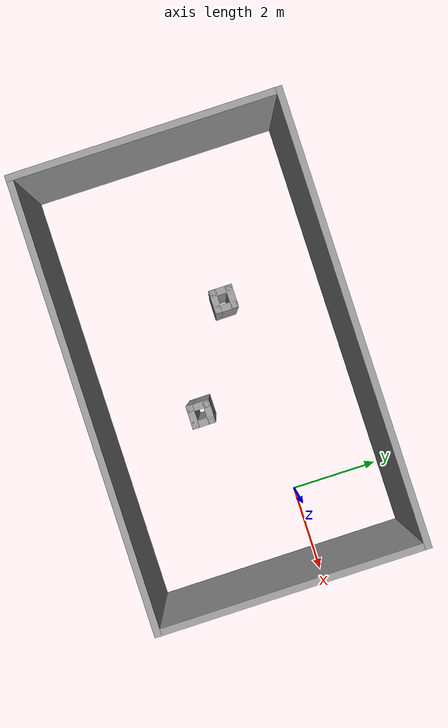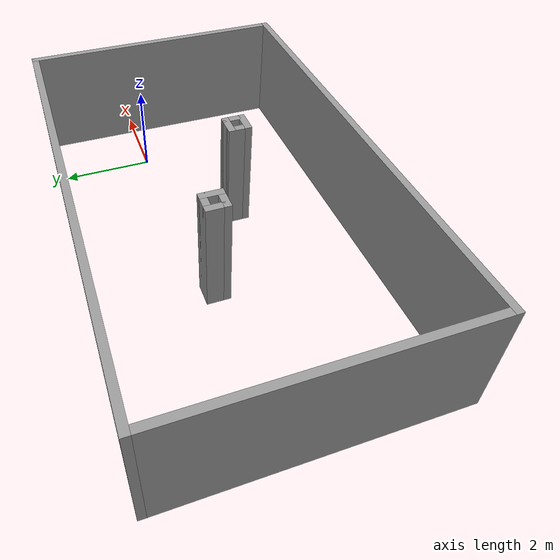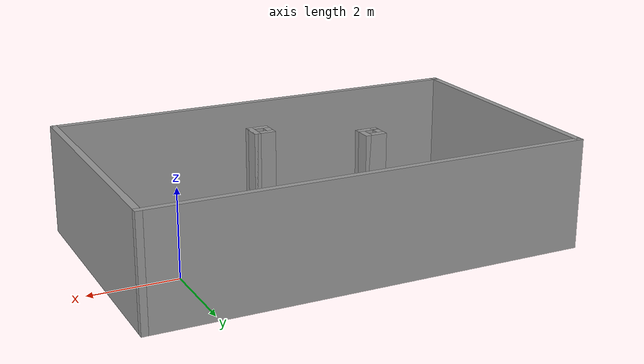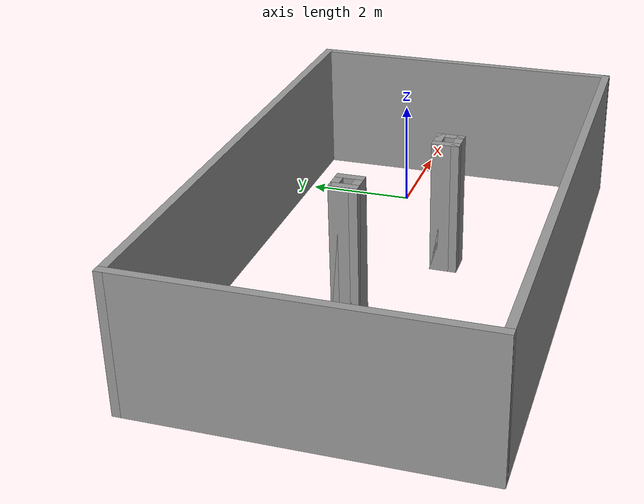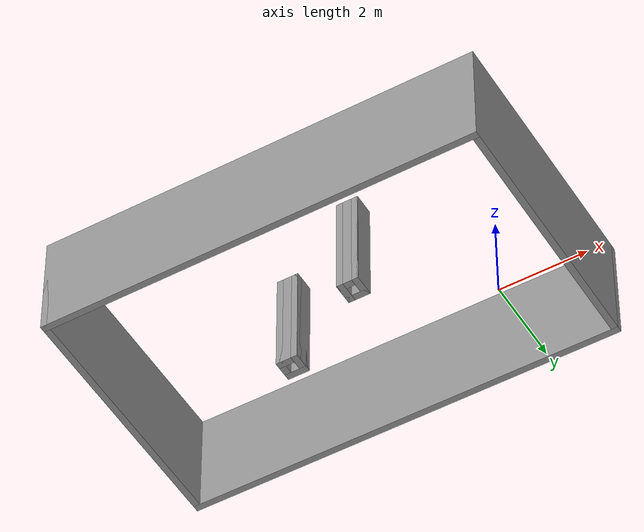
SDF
<?xml version='1.0'?>
<sdf version='1.7'>
  <model name='Test_1'>
    <pose>-3.415 -0.775 0 0 -0 0</pose>
    <link name='Wall_1'>
      <collision name='Wall_1_Collision'>
        <geometry>
          <box>
            <size>10 0.15 2.5</size>
          </box>
        </geometry>
        <pose>0 0 1.25 0 -0 0</pose>
      </collision>
      <visual name='Wall_1_Visual'>
        <pose>0 0 1.25 0 -0 0</pose>
        <geometry>
          <box>
            <size>10 0.15 2.5</size>
          </box>
        </geometry>
        <material>
          <script>
            <uri>file://media/materials/scripts/gazebo.material</uri>
            <name>Gazebo/Grey</name>
          </script>
          <ambient>1 1 1 1</ambient>
        </material>
        <meta>
          <layer>0</layer>
        </meta>
      </visual>
      <pose>0 2.925 0 0 -0 3.14159</pose>
    </link>
    <link name='Wall_10'>
      <collision name='Wall_10_Collision'>
        <geometry>
          <box>
            <size>0.5 0.15 2.5</size>
          </box>
        </geometry>
        <pose>0 0 1.25 0 -0 0</pose>
      </collision>
      <visual name='Wall_10_Visual'>
        <pose>0 0 1.25 0 -0 0</pose>
        <geometry>
          <box>
            <size>0.5 0.15 2.5</size>
          </box>
        </geometry>
        <material>
          <script>
            <uri>file://media/materials/scripts/gazebo.material</uri>
            <name>Gazebo/Grey</name>
          </script>
          <ambient>1 1 1 1</ambient>
        </material>
        <meta>
          <layer>0</layer>
        </meta>
      </visual>
      <pose>0.92 -0.855 0 0 -0 3.14159</pose>
    </link>
    <link name='Wall_12'>
      <collision name='Wall_12_Collision'>
        <geometry>
          <box>
            <size>0.5 0.15 2.5</size>
          </box>
        </geometry>
        <pose>0 0 1.25 0 -0 0</pose>
      </collision>
      <visual name='Wall_12_Visual'>
        <pose>0 0 1.25 0 -0 0</pose>
        <geometry>
          <box>
            <size>0.5 0.15 2.5</size>
          </box>
        </geometry>
        <material>
          <script>
            <uri>file://media/materials/scripts/gazebo.material</uri>
            <name>Gazebo/Grey</name>
          </script>
          <ambient>1 1 1 1</ambient>
        </material>
        <meta>
          <layer>0</layer>
        </meta>
      </visual>
      <pose>-1.19 0.675 0 0 -0 0</pose>
    </link>
    <link name='Wall_13'>
      <collision name='Wall_13_Collision'>
        <geometry>
          <box>
            <size>0.5 0.15 2.5</size>
          </box>
        </geometry>
        <pose>0 0 1.25 0 -0 0</pose>
      </collision>
      <visual name='Wall_13_Visual'>
        <pose>0 0 1.25 0 -0 0</pose>
        <geometry>
          <box>
            <size>0.5 0.15 2.5</size>
          </box>
        </geometry>
        <material>
          <script>
            <uri>file://media/materials/scripts/gazebo.material</uri>
            <name>Gazebo/Grey</name>
          </script>
          <ambient>1 1 1 1</ambient>
        </material>
        <meta>
          <layer>0</layer>
        </meta>
      </visual>
      <pose>-1.015 0.5 0 0 -0 -1.5708</pose>
    </link>
    <link name='Wall_14'>
      <collision name='Wall_14_Collision'>
        <geometry>
          <box>
            <size>0.5 0.15 2.5</size>
          </box>
        </geometry>
        <pose>0 0 1.25 0 -0 0</pose>
      </collision>
      <visual name='Wall_14_Visual'>
        <pose>0 0 1.25 0 -0 0</pose>
        <geometry>
          <box>
            <size>0.5 0.15 2.5</size>
          </box>
        </geometry>
        <material>
          <script>
            <uri>file://media/materials/scripts/gazebo.material</uri>
            <name>Gazebo/Grey</name>
          </script>
          <ambient>1 1 1 1</ambient>
        </material>
        <meta>
          <layer>0</layer>
        </meta>
      </visual>
      <pose>-1.19 0.325 0 0 -0 3.14159</pose>
    </link>
    <link name='Wall_15'>
      <collision name='Wall_15_Collision'>
        <geometry>
          <box>
            <size>0.5 0.15 2.5</size>
          </box>
        </geometry>
        <pose>0 0 1.25 0 -0 0</pose>
      </collision>
      <visual name='Wall_15_Visual'>
        <pose>0 0 1.25 0 -0 0</pose>
        <geometry>
          <box>
            <size>0.5 0.15 2.5</size>
          </box>
        </geometry>
        <material>
          <script>
            <uri>file://media/materials/scripts/gazebo.material</uri>
            <name>Gazebo/Grey</name>
          </script>
          <ambient>1 1 1 1</ambient>
        </material>
        <meta>
          <layer>0</layer>
        </meta>
      </visual>
      <pose>-1.365 0.5 0 0 -0 1.5708</pose>
    </link>
    <link name='Wall_2'>
      <collision name='Wall_2_Collision'>
        <geometry>
          <box>
            <size>6 0.15 2.5</size>
          </box>
        </geometry>
        <pose>0 0 1.25 0 -0 0</pose>
      </collision>
      <visual name='Wall_2_Visual'>
        <pose>0 0 1.25 0 -0 0</pose>
        <geometry>
          <box>
            <size>6 0.15 2.5</size>
          </box>
        </geometry>
        <material>
          <script>
            <uri>file://media/materials/scripts/gazebo.material</uri>
            <name>Gazebo/Grey</name>
          </script>
          <ambient>1 1 1 1</ambient>
        </material>
        <meta>
          <layer>0</layer>
        </meta>
      </visual>
      <pose>-4.925 0 0 0 -0 -1.5708</pose>
    </link>
    <link name='Wall_3'>
      <collision name='Wall_3_Collision'>
        <geometry>
          <box>
            <size>10 0.15 2.5</size>
          </box>
        </geometry>
        <pose>0 0 1.25 0 -0 0</pose>
      </collision>
      <visual name='Wall_3_Visual'>
        <pose>0 0 1.25 0 -0 0</pose>
        <geometry>
          <box>
            <size>10 0.15 2.5</size>
          </box>
        </geometry>
        <material>
          <script>
            <uri>file://media/materials/scripts/gazebo.material</uri>
            <name>Gazebo/Grey</name>
          </script>
          <ambient>1 1 1 1</ambient>
        </material>
        <meta>
          <layer>0</layer>
        </meta>
      </visual>
      <pose>0 -2.925 0 0 -0 0</pose>
    </link>
    <link name='Wall_4'>
      <collision name='Wall_4_Collision'>
        <geometry>
          <box>
            <size>6 0.15 2.5</size>
          </box>
        </geometry>
        <pose>0 0 1.25 0 -0 0</pose>
      </collision>
      <visual name='Wall_4_Visual'>
        <pose>0 0 1.25 0 -0 0</pose>
        <geometry>
          <box>
            <size>6 0.15 2.5</size>
          </box>
        </geometry>
        <material>
          <script>
            <uri>file://media/materials/scripts/gazebo.material</uri>
            <name>Gazebo/Grey</name>
          </script>
          <ambient>1 1 1 1</ambient>
        </material>
        <meta>
          <layer>0</layer>
        </meta>
      </visual>
      <pose>4.925 0 0 0 -0 1.5708</pose>
    </link>
    <link name='Wall_7'>
      <collision name='Wall_7_Collision'>
        <geometry>
          <box>
            <size>0.5 0.15 2.5</size>
          </box>
        </geometry>
        <pose>0 0 1.25 0 -0 0</pose>
      </collision>
      <visual name='Wall_7_Visual'>
        <pose>0 0 1.25 0 -0 0</pose>
        <geometry>
          <box>
            <size>0.5 0.15 2.5</size>
          </box>
        </geometry>
        <material>
          <script>
            <uri>file://media/materials/scripts/gazebo.material</uri>
            <name>Gazebo/Grey</name>
          </script>
          <ambient>1 1 1 1</ambient>
        </material>
        <meta>
          <layer>0</layer>
        </meta>
      </visual>
      <pose>0.745 -0.68 0 0 -0 1.5708</pose>
    </link>
    <link name='Wall_8'>
      <collision name='Wall_8_Collision'>
        <geometry>
          <box>
            <size>0.5 0.15 2.5</size>
          </box>
        </geometry>
        <pose>0 0 1.25 0 -0 0</pose>
      </collision>
      <visual name='Wall_8_Visual'>
        <pose>0 0 1.25 0 -0 0</pose>
        <geometry>
          <box>
            <size>0.5 0.15 2.5</size>
          </box>
        </geometry>
        <material>
          <script>
            <uri>file://media/materials/scripts/gazebo.material</uri>
            <name>Gazebo/Grey</name>
          </script>
          <ambient>1 1 1 1</ambient>
        </material>
        <meta>
          <layer>0</layer>
        </meta>
      </visual>
      <pose>0.92 -0.505 0 0 -0 0</pose>
    </link>
    <link name='Wall_9'>
      <collision name='Wall_9_Collision'>
        <geometry>
          <box>
            <size>0.5 0.15 2.5</size>
          </box>
        </geometry>
        <pose>0 0 1.25 0 -0 0</pose>
      </collision>
      <visual name='Wall_9_Visual'>
        <pose>0 0 1.25 0 -0 0</pose>
        <geometry>
          <box>
            <size>0.5 0.15 2.5</size>
          </box>
        </geometry>
        <material>
          <script>
            <uri>file://media/materials/scripts/gazebo.material</uri>
            <name>Gazebo/Grey</name>
          </script>
          <ambient>1 1 1 1</ambient>
        </material>
        <meta>
          <layer>0</layer>
        </meta>
      </visual>
      <pose>1.095 -0.68 0 0 -0 -1.5708</pose>
    </link>
    <static>1</static>
  </model>
</sdf>
